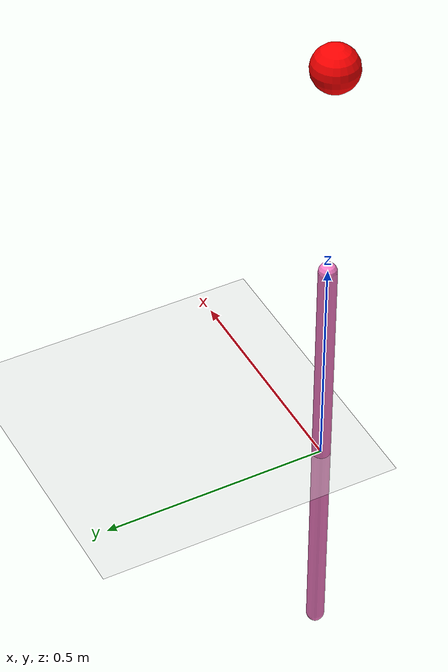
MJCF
<mujoco model="cane_sim">
    <compiler angle="degree"/>
    <option gravity="0 0 -9.81"/>

    <worldbody>
        <!-- Anchor (User's Hand) -->
        <geom name="floor" type="plane" pos="0 0 0" size="10 10 0.1" rgba="0.8 0.8 0.8 1"/>
        <body name="anchor" pos="0 0 1">
            <geom type="sphere" size="0.05" rgba="1 0 0 1"/>

            <!-- Cane -->
            <body name="cane" pos="0 0 -0.5">
                <joint name="swing" type="hinge" pos="0 0 0" axis="0 1 0" range="-80 80"/>
                <geom type="capsule" fromto="0 0 0 0 0 -1" size="0.02" rgba="1 0.5 0.8 1"/>
            </body>
        </body>
    </worldbody>

    <!-- Actuator to Control the Swing -->
    <actuator>
        <motor joint="swing" ctrlrange="-1 1" gear="50"/>
    </actuator>
</mujoco>
